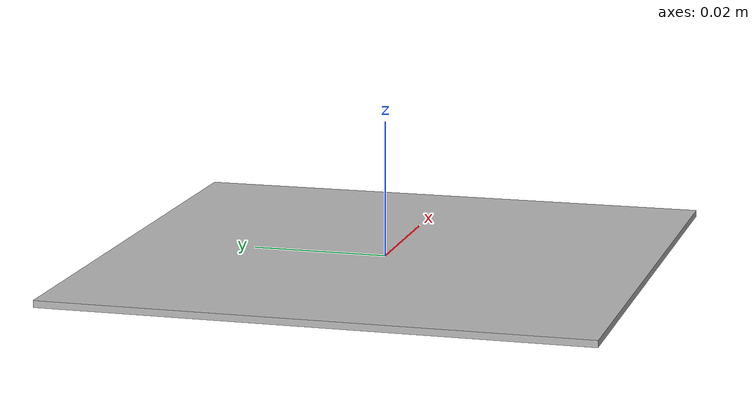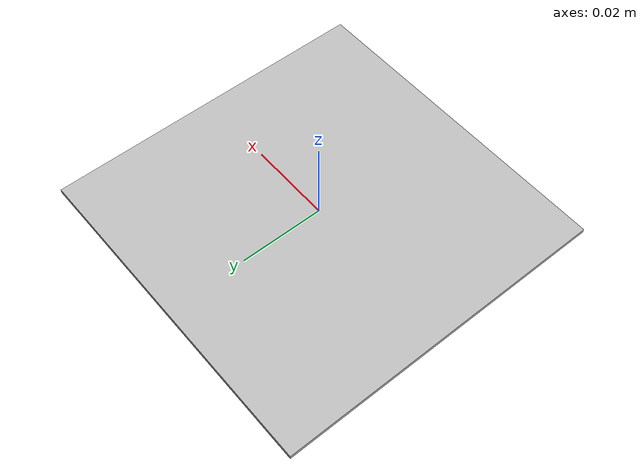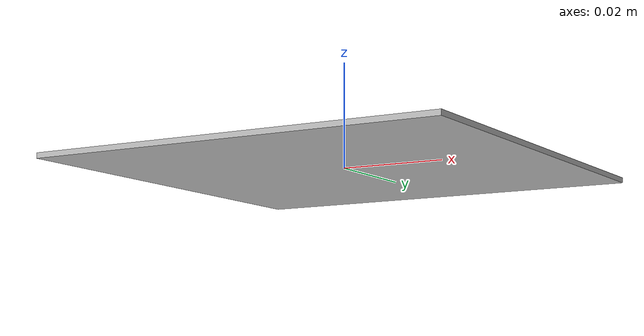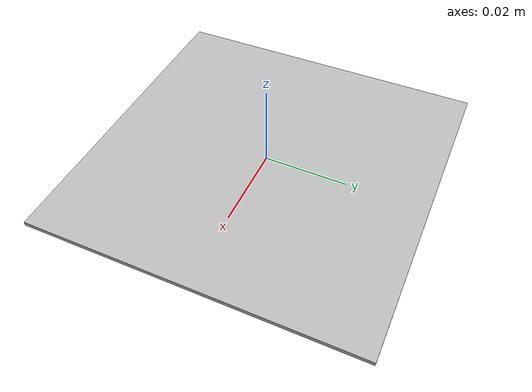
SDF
<?xml version="1.0" ?>
<sdf version="1.4">
<model name="aruco_code_{xxx}">
    <static>true</static>
    <link name="link">
        <collision name="collision">
        <geometry>
            <box>
                <size>0.079 0.079 0.001</size>
            </box>
        </geometry>
        </collision>
    <visual name="visual">
        <geometry>
            <box>
                <size>0.079 0.079 0.001</size>
            </box>
        </geometry>
        <material>
            <script>
                <uri>model://aruco_code_{xxx}/materials/scripts</uri>
                <uri>model://aruco_code_{xxx}/materials/textures</uri>
                <name>ac/aruco_code_{xxx}</name>
            </script>
        </material>
    </visual>
    </link>
</model>
</sdf>
